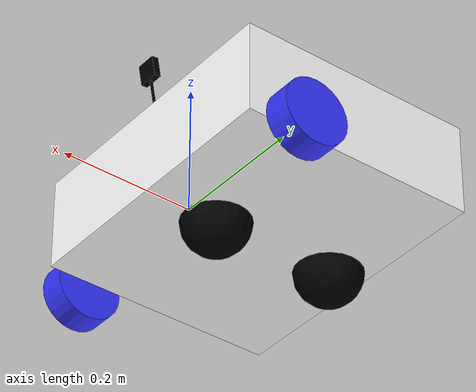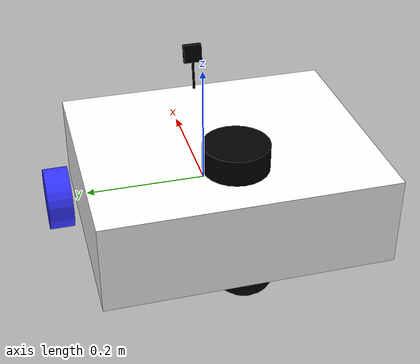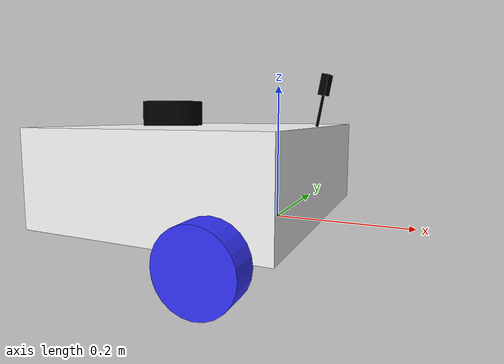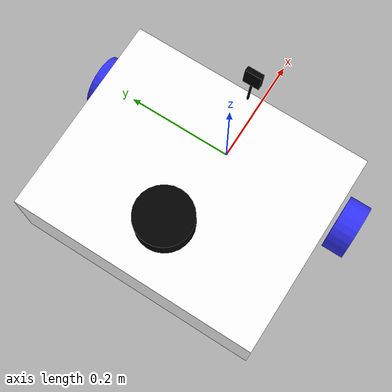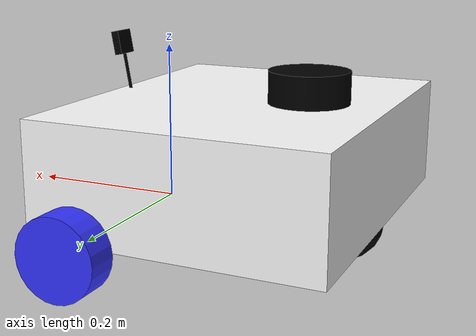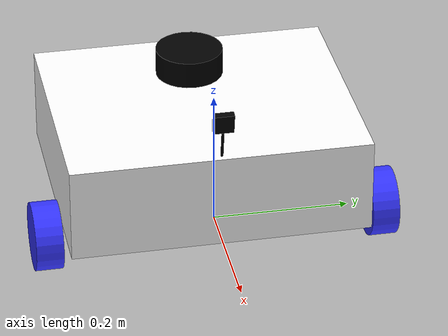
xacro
<?xml version="1.0"?>
<robot xmlns:xacro="http://www.ros.org/wiki/xacro"  name="robot">

    <xacro:arg name="use_ros2_control" default="true"/>

    <xacro:include filename="robot_core.xacro" />

    <xacro:if value="$(arg use_ros2_control)">
        <xacro:include filename="ros2_control.xacro" />
    </xacro:if>
    <xacro:unless value="$(arg use_ros2_control)">
        <xacro:include filename="gazebo_control.xacro" />
    </xacro:unless>
    <xacro:include filename="lidar.xacro" />
    <xacro:include filename="camera.xacro" />

</robot>

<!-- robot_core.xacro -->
<robot xmlns:xacro="http://www.ros.org/wiki/xacro"  name="robot">

    <xacro:include filename="inertial_macros.xacro" />
    <material name="white">
        <color rgba="1 1 1 1" />
    </material>

    <material name="orange">
        <color rgba="1 0.3 0.1 1"/>
    </material>

    <material name="blue">
        <color rgba="0.2 0.2 1 1"/>
    </material>

    <material name="black">
        <color rgba="0 0 0 1"/>
    </material>

    <material name="red">
        <color rgba="1 0 0 1"/>
    </material>

<!-- BASE LINK -->

    <link name="base_link">

    </link>

    <!-- CHASSIS LINK -->

    <joint name="chassis_joint" type="fixed">
        <parent link="base_link"/>
        <child link="chassis"/>
        <origin xyz="-0.29 0 0"/>
    </joint>

    <link name="chassis">
        <visual>
        <origin xyz="0.18 0 0.07" />
            <geometry>
                <box size="0.36 0.44 0.14" />
            </geometry>
            <material name="white" />
        </visual>
        <collision>
            <origin xyz="0.18 0 0.07" />
            <geometry>
                <box size="0.36 0.44 0.14" />
            </geometry>
        </collision>
        <xacro:inertial_box mass="0.5" x="0.36" y="0.44" z="0.14">
            <origin xyz="0.18 0 0.07" rpy="0 0 0" />
        </xacro:inertial_box>
    </link>
    <gazebo reference="chassis">
        <material>Gazebo/White</material>
    </gazebo>

    <!-- LEFT WHEEL LINK -->

    <joint name="left_wheel_joint" type="continuous">
        <parent link="base_link"/>
        <child link="left_wheel"/>
        <origin xyz="0 0.2475 0" rpy="-${pi/2} 0 0" />
        <axis xyz="0 0 1"/>
    </joint>

    <link name="left_wheel">
        <visual>
            <geometry>
                <cylinder radius="0.05" length="0.04" />
            </geometry>
            <material name="blue" />
        </visual>
        <collision>
            <geometry>
                <sphere radius="0.05" />
            </geometry>
        </collision>
        <xacro:inertial_cylinder mass="0.1" radius="0.05" length="0.04">
            <origin xyz="0.0 0 0.0" rpy="0 0 0" />
        </xacro:inertial_cylinder>
    </link>
    <gazebo reference="left_wheel">
        <material>Gazebo/Blue</material>
    </gazebo>

   <!-- RIGHT WHEEL LINK -->

    <joint name="right_wheel_joint" type="continuous">
        <parent link="base_link"/>
        <child link="right_wheel"/>
        <origin xyz="0 -0.2475 0" rpy="${pi/2} 0 0" />
        <axis xyz="0 0 -1"/>
    </joint>

    <link name="right_wheel">
        <visual>
            <geometry>
                <cylinder radius="0.05" length="0.04" />
            </geometry>
            <material name="blue" />
        </visual>
        <collision>
            <geometry>
                <sphere radius="0.05" />
            </geometry>
        </collision>
        <xacro:inertial_cylinder mass="0.1" radius="0.05" length="0.04">
            <origin xyz="0.0 0 0.0" rpy="0 0 0" />
        </xacro:inertial_cylinder>
    </link>
    <gazebo reference="right_wheel">
        <material>Gazebo/Blue</material>
    </gazebo>

<!-- CASTER WHEEL LINK FRONT -->

    <joint name="caster_wheel_joint_front" type="fixed">
        <parent link="chassis"/>
        <child link="caster_wheel_front"/>
        <origin xyz="0.245 0 0"/>
    </joint>

    <link name="caster_wheel_front">
        <visual>
            <geometry>
                <sphere radius="0.05" />
            </geometry>
            <material name="black" />
        </visual>
        <collision>
            <geometry>
                <sphere radius="0.05" />
            </geometry>
        </collision>
        <xacro:inertial_sphere mass="0.1" radius="0.05">
            <origin xyz="0.0 0 0.0" rpy="0 0 0" />
        </xacro:inertial_sphere>
    </link>

    <gazebo reference="caster_wheel_front">
        <material>Gazebo/Black</material>
        <mu1 value="0.001" />
        <mu2 value="0.001" />
    </gazebo>

<!-- CASTER WHEEL LINK BACK -->

    <joint name="caster_wheel_joint_back" type="fixed">
        <parent link="chassis"/>
        <child link="caster_wheel_back"/>
        <origin xyz="0.052 0 0"/>
    </joint>

    <link name="caster_wheel_back">
        <visual>
            <geometry>
                <sphere radius="0.05" />
            </geometry>
            <material name="black" />
        </visual>
        <collision>
            <geometry>
                <sphere radius="0.05" />
            </geometry>
        </collision>
    </link>
    <gazebo reference="caster_wheel_back">
        <material>Gazebo/Black</material>
        <mu1 value="0.001" />
        <mu2 value="0.001" />
    </gazebo>

</robot>

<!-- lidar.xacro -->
<robot xmlns:xacro="http://www.ros.org/wiki/xacro" >

    <joint name="laser_joint" type="fixed">
        <parent link="chassis"/>
        <child link="laser_frame"/>
        <origin xyz="0.1 0 0.16" rpy="0 0 0"/>
    </joint>

    <link name="laser_frame">
        <visual>
            <geometry>
                <cylinder radius="0.05" length="0.04"/>
            </geometry>
            <material name="black"/>
        </visual>
        <visual>
            <origin xyz="0 0 -0.05"/>
            <geometry>
                <cylinder radius="0.01" length="0.1"/>
            </geometry>
            <material name="black"/>
        </visual>
        <collision>
            <geometry>
                <cylinder radius="0.05" length="0.04"/>
            </geometry>
        </collision>
        <xacro:inertial_cylinder mass="0.1" length="0.04" radius="0.05">
            <origin xyz="0 0 0" rpy="0 0 0"/>
        </xacro:inertial_cylinder>
    </link>

    <gazebo reference="laser_frame">
        <material>Gazebo/Black</material>

        <sensor name="laser" type="ray">
            <pose> 0 0 0 0 0 0 </pose>
            <visualize>false</visualize>
            <update_rate>10</update_rate>
            <ray>
                <scan>
                    <horizontal>
                        <samples>360</samples>
                        <resolution>1</resolution>
                        <min_angle>-3.14</min_angle>
                        <max_angle>3.14</max_angle>
                    </horizontal>
                </scan>
                <range>
                    <min>0.3</min>
                    <max>12</max>
                     <resolution>0.01</resolution>
                </range>
            </ray>
            <plugin name="laser_controller" filename="libgazebo_ros_ray_sensor.so">
                <ros>
                    <argument>~/out:=scan</argument>
                </ros>
                <output_type>sensor_msgs/LaserScan</output_type>
                <frame_name>laser_frame</frame_name>
            </plugin>
        </sensor>
    </gazebo>

</robot>

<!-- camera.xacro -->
<robot xmlns:xacro="http://www.ros.org/wiki/xacro" >

    <joint name="camera_joint" type="fixed">
        <parent link="chassis"/>
        <child link="camera_link"/>
        <origin xyz="0.36 0 0.2" rpy="0 0.18 0"/>
    </joint>

    <link name="camera_link">
        <visual>
            <geometry>
                <box size="0.010 0.03 0.03"/>
            </geometry>
            <material name="black"/>
        </visual>
        <visual>
            <origin xyz="0 0 -0.05"/>
            <geometry>
                <cylinder radius="0.002" length="0.1"/>
            </geometry>
            <material name="black"/>
        </visual>
    </link>

    <joint name="camera_optical_joint" type="fixed">
        <parent link="camera_link"/>
        <child link="camera_link_optical"/>
        <origin xyz="0 0 0" rpy="${-pi/2} 0 ${-pi/2}"/>
    </joint>

    <link name="camera_link_optical"></link>

    <gazebo reference="camera_link">
        <material>Gazebo/Black</material>

        <sensor name="camera" type="camera">
            <pose> 0 0 0 0 0 0 </pose>
            <visualize>true</visualize>
            <update_rate>10</update_rate>
            <camera>
                <horizontal_fov>1.089</horizontal_fov>
                <image>
                    <format>R8G8B8</format>
                    <width>640</width>
                    <height>480</height>
                </image>
                <clip>
                    <near>0.05</near>
                    <far>8.0</far>
                </clip>
            </camera>
            <plugin name="camera_controller" filename="libgazebo_ros_camera.so">
                <frame_name>camera_link_optical</frame_name>
            </plugin>
        </sensor>
    </gazebo>

</robot>
